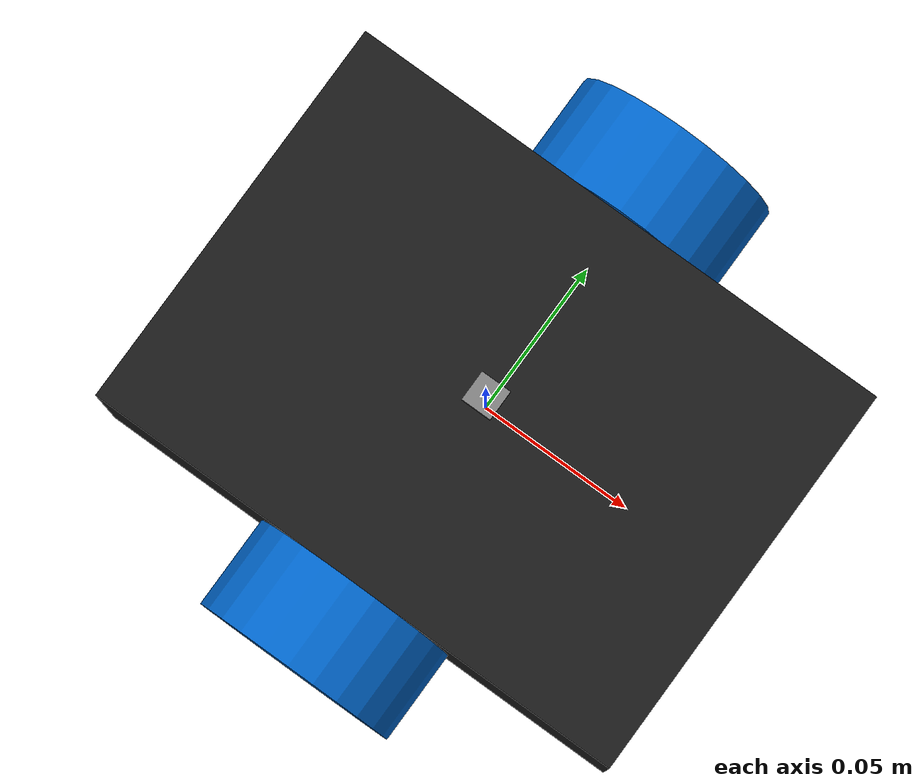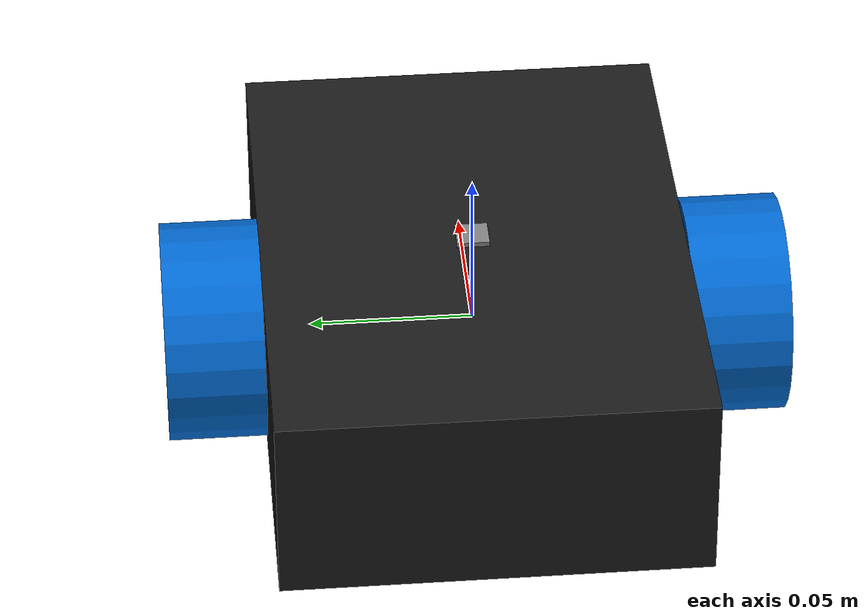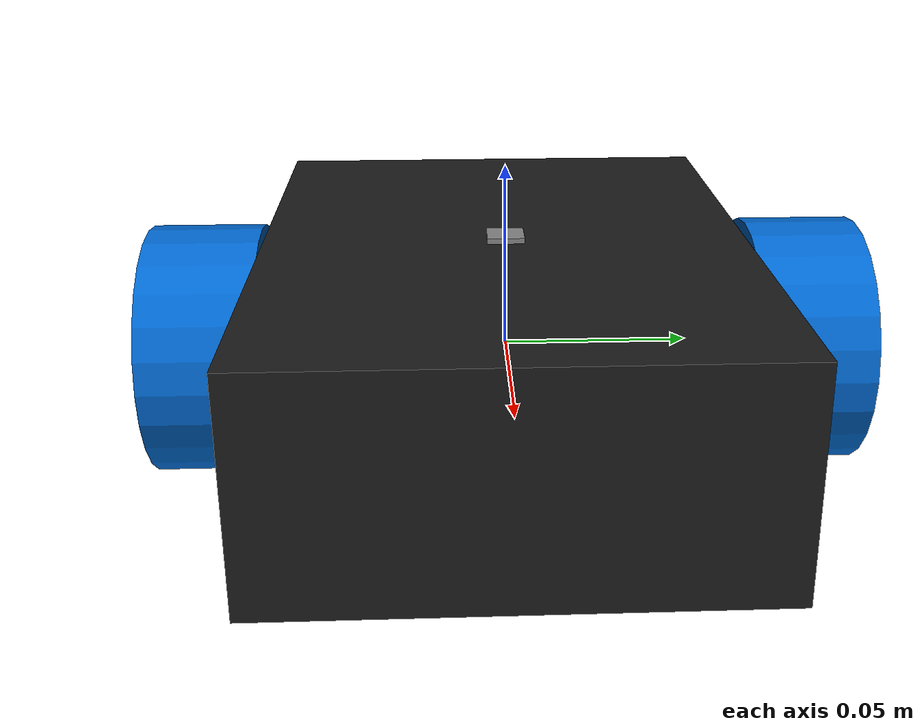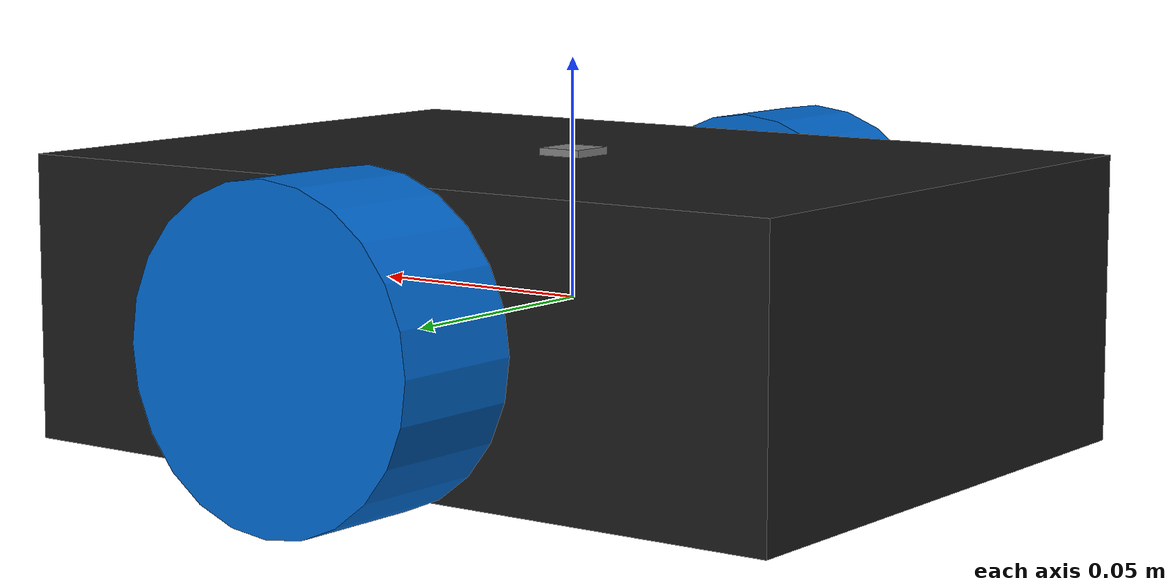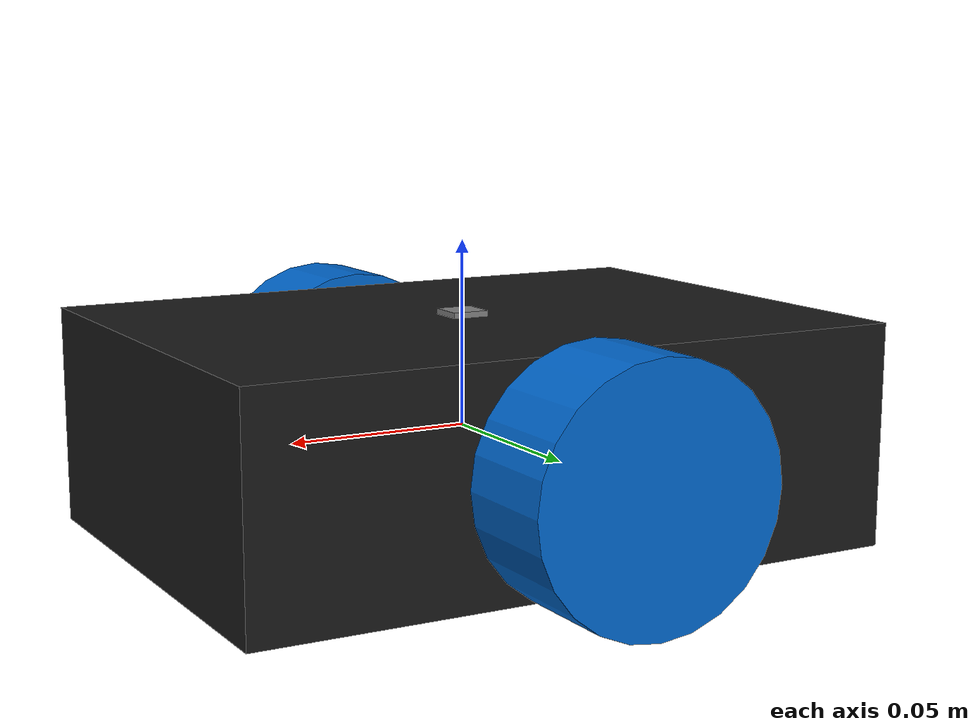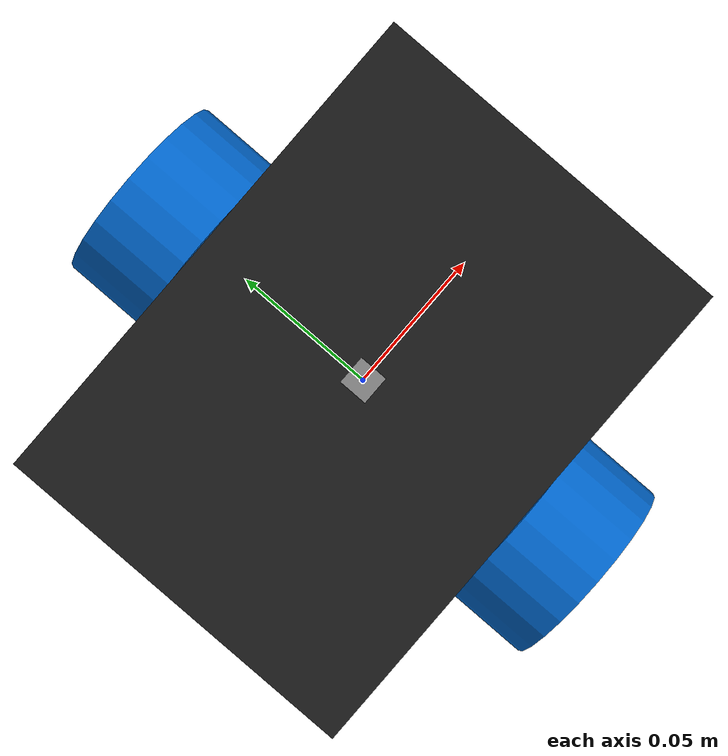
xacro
<?xml version="1.0"?>

<robot name="sbr" xmlns:xacro="http://www.ros.org/wiki/xacro">

  <!-- ── Physical parameters ──────────────────────────────────── -->
  <xacro:property name="wheelbase"       value="0.160"/>
  <xacro:property name="wheel_radius"    value="0.0335"/>
  <xacro:property name="wheel_width"     value="0.030"/>
  <xacro:property name="chassis_width"   value="0.130"/>
  <xacro:property name="chassis_length"  value="0.180"/>
  <xacro:property name="chassis_height"  value="0.060"/>
  <xacro:property name="chassis_mass"    value="1.200"/>
  <xacro:property name="wheel_mass"      value="0.100"/>

  <!-- ── Materials ─────────────────────────────────────────────── -->
  <material name="black">
    <color rgba="0.1 0.1 0.1 1.0"/>
  </material>
  <material name="blue">
    <color rgba="0.0 0.4 0.8 1.0"/>
  </material>
  <material name="gray">
    <color rgba="0.5 0.5 0.5 1.0"/>
  </material>

  <!-- ── base_link ─────────────────────────────────────────────── -->
  <link name="base_link">
    <visual>
      <geometry>
        <box size="${chassis_length} ${chassis_width} ${chassis_height}"/>
      </geometry>
      <material name="black"/>
    </visual>
    <collision>
      <geometry>
        <box size="${chassis_length} ${chassis_width} ${chassis_height}"/>
      </geometry>
    </collision>
    <inertial>
      <mass value="${chassis_mass}"/>
      <inertia
        ixx="${(1.0/12.0)*chassis_mass*(chassis_width*chassis_width + chassis_height*chassis_height)}"
        iyy="${(1.0/12.0)*chassis_mass*(chassis_length*chassis_length + chassis_height*chassis_height)}"
        izz="${(1.0/12.0)*chassis_mass*(chassis_length*chassis_length + chassis_width*chassis_width)}"
        ixy="0" ixz="0" iyz="0"/>
    </inertial>
  </link>

  <!-- ── Left wheel (Motor 1) ──────────────────────────────────── -->
  <link name="left_wheel">
    <visual>
      <geometry>
        <cylinder radius="${wheel_radius}" length="${wheel_width}"/>
      </geometry>
      <material name="blue"/>
    </visual>
    <collision>
      <geometry>
        <cylinder radius="${wheel_radius}" length="${wheel_width}"/>
      </geometry>
    </collision>
    <inertial>
      <mass value="${wheel_mass}"/>
      <inertia
        ixx="${(1.0/12.0)*wheel_mass*(3*wheel_radius*wheel_radius + wheel_width*wheel_width)}"
        iyy="${(1.0/12.0)*wheel_mass*(3*wheel_radius*wheel_radius + wheel_width*wheel_width)}"
        izz="${0.5*wheel_mass*wheel_radius*wheel_radius}"
        ixy="0" ixz="0" iyz="0"/>
    </inertial>
  </link>

  <joint name="left_wheel_joint" type="continuous">
    <parent link="base_link"/>
    <child  link="left_wheel"/>
    <origin xyz="0 ${wheelbase/2} 0" rpy="-${pi/2} 0 0"/>
    <axis xyz="0 0 1"/>
  </joint>

  <!-- ── Right wheel (Motor 2) ─────────────────────────────────── -->
  <link name="right_wheel">
    <visual>
      <geometry>
        <cylinder radius="${wheel_radius}" length="${wheel_width}"/>
      </geometry>
      <material name="blue"/>
    </visual>
    <collision>
      <geometry>
        <cylinder radius="${wheel_radius}" length="${wheel_width}"/>
      </geometry>
    </collision>
    <inertial>
      <mass value="${wheel_mass}"/>
      <inertia
        ixx="${(1.0/12.0)*wheel_mass*(3*wheel_radius*wheel_radius + wheel_width*wheel_width)}"
        iyy="${(1.0/12.0)*wheel_mass*(3*wheel_radius*wheel_radius + wheel_width*wheel_width)}"
        izz="${0.5*wheel_mass*wheel_radius*wheel_radius}"
        ixy="0" ixz="0" iyz="0"/>
    </inertial>
  </link>

  <joint name="right_wheel_joint" type="continuous">
    <parent link="base_link"/>
    <child  link="right_wheel"/>
    <origin xyz="0 -${wheelbase/2} 0" rpy="${pi/2} 0 0"/>
    <axis xyz="0 0 1"/>
  </joint>

  <!-- ── IMU link (ICM-20948 mount) ────────────────────────────── -->
  <!-- Adjust xyz to match physical sensor position on chassis.     -->
  <link name="imu_link">
    <visual>
      <geometry><box size="0.010 0.010 0.003"/></geometry>
      <material name="gray"/>
    </visual>
    <inertial>
      <mass value="0.005"/>
      <inertia ixx="1e-6" iyy="1e-6" izz="1e-6" ixy="0" ixz="0" iyz="0"/>
    </inertial>
  </link>

  <joint name="imu_joint" type="fixed">
    <parent link="base_link"/>
    <child  link="imu_link"/>
    <origin xyz="0 0 0.030" rpy="0 0 0"/>
  </joint>

  <!-- ── Laser frame placeholder (Phase 5 — LiDAR) ─────────────── -->
  <link name="laser_frame"/>
  <joint name="laser_joint" type="fixed">
    <parent link="base_link"/>
    <child  link="laser_frame"/>
    <origin xyz="0.080 0 0.120" rpy="0 0 0"/>
  </joint>

  <!-- ── Camera frame placeholder (Phase 6 — Vision) ───────────── -->
  <link name="camera_frame"/>
  <joint name="camera_joint" type="fixed">
    <parent link="base_link"/>
    <child  link="camera_frame"/>
    <origin xyz="0.090 0 0.100" rpy="0 0 0"/>
  </joint>

</robot>
